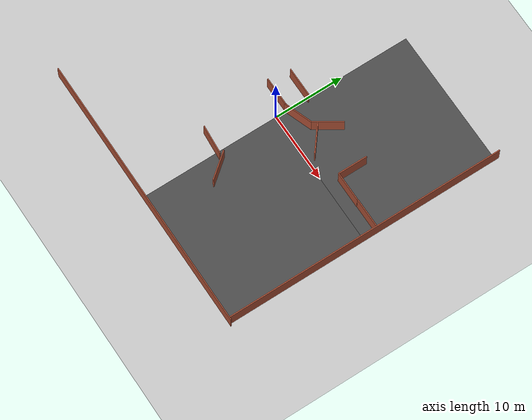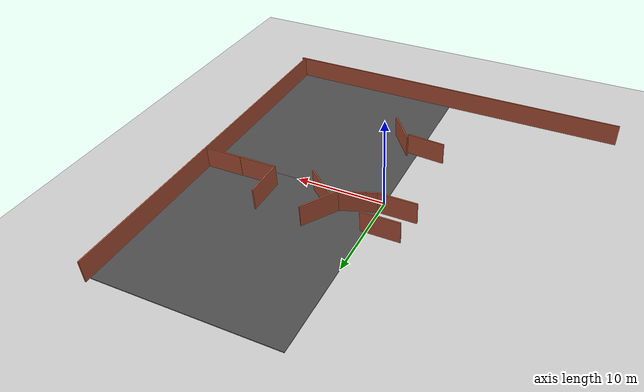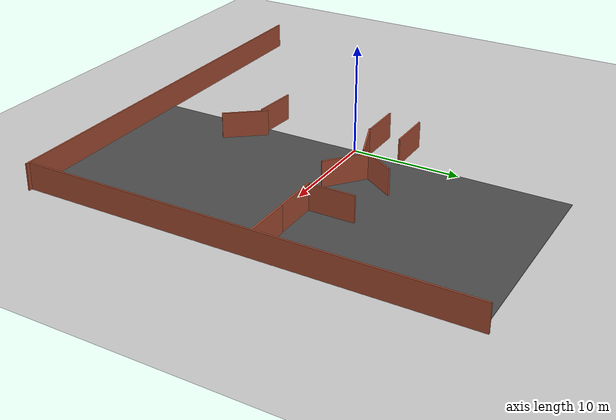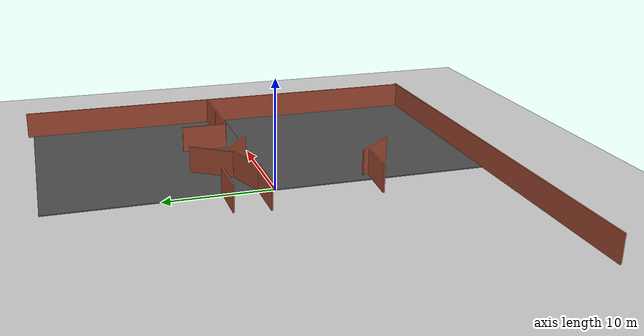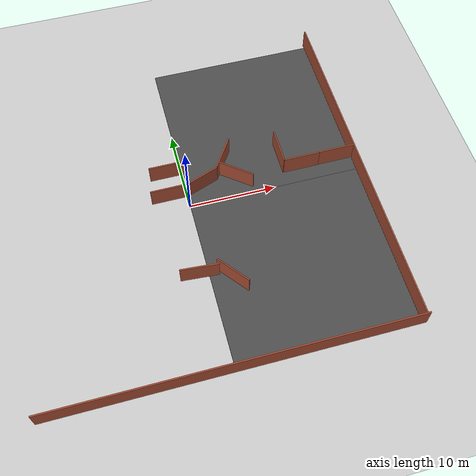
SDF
<sdf version="1.6">
 <world name="default">
  <model name="ground_plane">
   <static>1</static>
   <link name="link">
    <collision name="collision">
     <geometry><plane><normal>0 0 1</normal><size>100 100</size></plane></geometry>
     <surface><friction><ode><mu>100</mu><mu2>50</mu2></ode></friction></surface>
    </collision>
    <visual name="visual">
     <cast_shadows>0</cast_shadows>
     <geometry><plane><normal>0 0 1</normal><size>100 100</size></plane></geometry>
     <material>
      <script><uri>file://media/materials/scripts/gazebo.material</uri><name>Gazebo/Grey</name></script>
     </material>
    </visual>
   </link>
  </model>
  <model name="asphalt_plane">
   <static>1</static>
   <link name="link">
    <collision name="collision"><geometry><box><size>20 20 0.1</size></box></geometry></collision>
    <visual name="visual">
     <cast_shadows>0</cast_shadows>
     <geometry><box><size>20 20 0.1</size></box></geometry>
     <material>
      <script>
       <uri>model://asphalt_plane/materials/scripts</uri>
       <uri>model://asphalt_plane/materials/textures</uri>
       <name>vrc/asphalt</name>
      </script>
     </material>
    </visual>
   </link>
   <pose>10 10 0 0 -0 0</pose>
  </model>
  <model name="asphalt_plane_2">
   <static>1</static>
   <link name="link">
    <collision name="collision"><geometry><box><size>20 20 0.1</size></box></geometry></collision>
    <visual name="visual">
     <cast_shadows>0</cast_shadows>
     <geometry><box><size>20 20 0.1</size></box></geometry>
     <material>
      <script>
       <uri>model://asphalt_plane/materials/scripts</uri>
       <uri>model://asphalt_plane/materials/textures</uri>
       <name>vrc/asphalt</name>
      </script>
     </material>
    </visual>
   </link>
   <pose>10 -10 0 0 -0 0</pose>
  </model>
  <model name="brick_longwalll">
   <pose>0.229981 -20.0786 0 0 -0 0</pose>
   <link name="brick_longwall_wall_0">
    <collision name="brick_longwall_wall_0_Collision">
     <geometry><box><size>40.5 0.15 2.5</size></box></geometry>
     <pose>0 0 1.25 0 -0 0</pose>
    </collision>
    <visual name="brick_longwall_wall_0_Visual">
     <pose>0 0 1.25 0 -0 0</pose>
     <geometry><box><size>40.5 0.15 2.5</size></box></geometry>
     <material>
      <script><uri>file://media/materials/scripts/gazebo.material</uri><name>Gazebo/Bricks</name></script>
      <ambient>1 1 1 1</ambient>
     </material>
    </visual>
    <pose>1e-06 0 0 0 -0 0</pose>
   </link>
   <static>1</static>
  </model>
  <model name="brick_longwalll_0_clone">
   <pose>20.1053 0.258056 0 0 0 -1.57092</pose>
   <link name="brick_longwall_wall_0">
    <collision name="brick_longwall_wall_0_Collision">
     <geometry><box><size>40.5 0.15 2.5</size></box></geometry>
     <pose>0 0 1.25 0 -0 0</pose>
    </collision>
    <visual name="brick_longwall_wall_0_Visual">
     <pose>0 0 1.25 0 -0 0</pose>
     <geometry><box><size>40.5 0.15 2.5</size></box></geometry>
     <material>
      <script><uri>file://media/materials/scripts/gazebo.material</uri><name>Gazebo/Bricks</name></script>
      <ambient>1 1 1 1</ambient>
     </material>
    </visual>
    <pose>1e-06 0 0 0 -0 0</pose>
   </link>
   <static>1</static>
  </model>
  <model name="worlds_0_clone">
   <pose>-1 -9 0 0 -0 1.49697</pose>
   <link name="brick_longwall_wall_0">
    <collision name="brick_longwall_wall_0_Collision">
     <geometry><box><size>4.25 0.15 2.5</size></box></geometry>
     <pose>0 0 1.25 0 -0 0</pose>
    </collision>
    <visual name="brick_longwall_wall_0_Visual">
     <pose>0 0 1.25 0 -0 0</pose>
     <geometry><box><size>4.25 0.15 2.5</size></box></geometry>
     <material>
      <script><uri>file://media/materials/scripts/gazebo.material</uri><name>Gazebo/Bricks</name></script>
      <ambient>1 1 1 1</ambient>
     </material>
    </visual>
    <pose>0 -0 0 0 -0 1.5708</pose>
   </link>
   <static>1</static>
  </model>
  <model name="worlds_2_clone">
   <pose>2.34689 -10.1873 0 0 -0 0.67691</pose>
   <link name="brick_longwall_wall_0">
    <collision name="brick_longwall_wall_0_Collision">
     <geometry><box><size>4.25 0.15 2.5</size></box></geometry>
     <pose>0 0 1.25 0 -0 0</pose>
    </collision>
    <visual name="brick_longwall_wall_0_Visual">
     <pose>0 0 1.25 0 -0 0</pose>
     <geometry><box><size>4.25 0.15 2.5</size></box></geometry>
     <material>
      <script><uri>file://media/materials/scripts/gazebo.material</uri><name>Gazebo/Bricks</name></script>
      <ambient>1 1 1 1</ambient>
     </material>
    </visual>
    <pose>0 -0 0 0 -0 1.5708</pose>
   </link>
   <static>1</static>
  </model>
  <model name="worlds_1_clone_0">
   <pose>11.6134 3.89135 0 0 -0 0</pose>
   <link name="brick_longwall_wall_0">
    <collision name="brick_longwall_wall_0_Collision">
     <geometry><box><size>4.25 0.15 2.5</size></box></geometry>
     <pose>0 0 1.25 0 -0 0</pose>
    </collision>
    <visual name="brick_longwall_wall_0_Visual">
     <pose>0 0 1.25 0 -0 0</pose>
     <geometry><box><size>4.25 0.15 2.5</size></box></geometry>
     <material>
      <script><uri>file://media/materials/scripts/gazebo.material</uri><name>Gazebo/Bricks</name></script>
      <ambient>1 1 1 1</ambient>
     </material>
    </visual>
    <pose>0 -0 0 0 -0 1.5708</pose>
   </link>
   <static>1</static>
  </model>
  <model name="worlds_1_clone_0_clone">
   <pose>13.736 1.79456 0 0 0 -1.57092</pose>
   <link name="brick_longwall_wall_0">
    <collision name="brick_longwall_wall_0_Collision">
     <geometry><box><size>4.25 0.15 2.5</size></box></geometry>
     <pose>0 0 1.25 0 -0 0</pose>
    </collision>
    <visual name="brick_longwall_wall_0_Visual">
     <pose>0 0 1.25 0 -0 0</pose>
     <geometry><box><size>4.25 0.15 2.5</size></box></geometry>
     <material>
      <script><uri>file://media/materials/scripts/gazebo.material</uri><name>Gazebo/Bricks</name></script>
      <ambient>1 1 1 1</ambient>
     </material>
    </visual>
    <pose>0 -0 0 0 -0 1.5708</pose>
   </link>
   <static>1</static>
  </model>
  <model name="worlds_1_clone_0_clone_clone">
   <pose>17.9203 1.82357 0 0 0 -1.57092</pose>
   <link name="brick_longwall_wall_0">
    <collision name="brick_longwall_wall_0_Collision">
     <geometry><box><size>4.25 0.15 2.5</size></box></geometry>
     <pose>0 0 1.25 0 -0 0</pose>
    </collision>
    <visual name="brick_longwall_wall_0_Visual">
     <pose>0 0 1.25 0 -0 0</pose>
     <geometry><box><size>4.25 0.15 2.5</size></box></geometry>
     <material>
      <script><uri>file://media/materials/scripts/gazebo.material</uri><name>Gazebo/Bricks</name></script>
      <ambient>1 1 1 1</ambient>
     </material>
    </visual>
    <pose>0 -0 0 0 -0 1.5708</pose>
   </link>
   <static>1</static>
  </model>
  <model name="worlds_1_clone_1_clone_7_clone_clone_clone">
   <pose>5 4.58681 0 0 0 -0.589381</pose>
   <link name="brick_longwall_wall_0">
    <collision name="brick_longwall_wall_0_Collision">
     <geometry><box><size>4.25 0.15 2.5</size></box></geometry>
     <pose>0 0 1.25 0 -0 0</pose>
    </collision>
    <visual name="brick_longwall_wall_0_Visual">
     <pose>0 0 1.25 0 -0 0</pose>
     <geometry><box><size>4.25 0.15 2.5</size></box></geometry>
     <material>
      <script><uri>file://media/materials/scripts/gazebo.material</uri><name>Gazebo/Bricks</name></script>
      <ambient>1 1 1 1</ambient>
     </material>
    </visual>
    <pose>0 -0 0 0 -0 1.5708</pose>
   </link>
   <static>1</static>
  </model>
  <model name="worlds_1_clone_0_clone_clone_0_clone_clone_0_clone_clone">
   <pose>-1.54431 4.60476 0 0 0 -1.57092</pose>
   <link name="brick_longwall_wall_0">
    <collision name="brick_longwall_wall_0_Collision">
     <geometry><box><size>4.25 0.15 2.5</size></box></geometry>
     <pose>0 0 1.25 0 -0 0</pose>
    </collision>
    <visual name="brick_longwall_wall_0_Visual">
     <pose>0 0 1.25 0 -0 0</pose>
     <geometry><box><size>4.25 0.15 2.5</size></box></geometry>
     <material>
      <script><uri>file://media/materials/scripts/gazebo.material</uri><name>Gazebo/Bricks</name></script>
      <ambient>1 1 1 1</ambient>
     </material>
    </visual>
    <pose>0 -0 0 0 -0 1.5708</pose>
   </link>
   <static>1</static>
  </model>
  <model name="worlds_1_clone_0_clone_clone_0_clone_clone_0_clone_clone_0">
   <pose>1.87166 2.0906 0 0 0 -1.22347</pose>
   <link name="brick_longwall_wall_0">
    <collision name="brick_longwall_wall_0_Collision">
     <geometry><box><size>4.25 0.15 2.5</size></box></geometry>
     <pose>0 0 1.25 0 -0 0</pose>
    </collision>
    <visual name="brick_longwall_wall_0_Visual">
     <pose>0 0 1.25 0 -0 0</pose>
     <geometry><box><size>4.25 0.15 2.5</size></box></geometry>
     <material>
      <script><uri>file://media/materials/scripts/gazebo.material</uri><name>Gazebo/Bricks</name></script>
      <ambient>1 1 1 1</ambient>
     </material>
    </visual>
    <pose>0 -0 0 0 -0 1.5708</pose>
   </link>
   <static>1</static>
  </model>
  <model name="worlds_1_clone_0_clone_clone_0_clone_clone_0_clone_clone_clone">
   <pose>-2 1.45154 0 0 0 -1.57092</pose>
   <link name="brick_longwall_wall_0">
    <collision name="brick_longwall_wall_0_Collision">
     <geometry><box><size>4.25 0.15 2.5</size></box></geometry>
     <pose>0 0 1.25 0 -0 0</pose>
    </collision>
    <visual name="brick_longwall_wall_0_Visual">
     <pose>0 0 1.25 0 -0 0</pose>
     <geometry><box><size>4.25 0.15 2.5</size></box></geometry>
     <material>
      <script><uri>file://media/materials/scripts/gazebo.material</uri><name>Gazebo/Bricks</name></script>
      <ambient>1 1 1 1</ambient>
     </material>
    </visual>
    <pose>0 -0 0 0 -0 1.5708</pose>
   </link>
   <static>1</static>
  </model>
  <model name="worlds_1_clone_1_clone_7_clone_clone_0">
   <pose>6.00131 2.13117 0 0 -0 0.90029</pose>
   <link name="brick_longwall_wall_0">
    <collision name="brick_longwall_wall_0_Collision">
     <geometry><box><size>4.25 0.15 2.5</size></box></geometry>
     <pose>0 0 1.25 0 -0 0</pose>
    </collision>
    <visual name="brick_longwall_wall_0_Visual">
     <pose>0 0 1.25 0 -0 0</pose>
     <geometry><box><size>4.25 0.15 2.5</size></box></geometry>
     <material>
      <script><uri>file://media/materials/scripts/gazebo.material</uri><name>Gazebo/Bricks</name></script>
      <ambient>1 1 1 1</ambient>
     </material>
    </visual>
    <pose>0 -0 0 0 -0 1.5708</pose>
   </link>
   <static>1</static>
  </model>
 </world>
</sdf>
